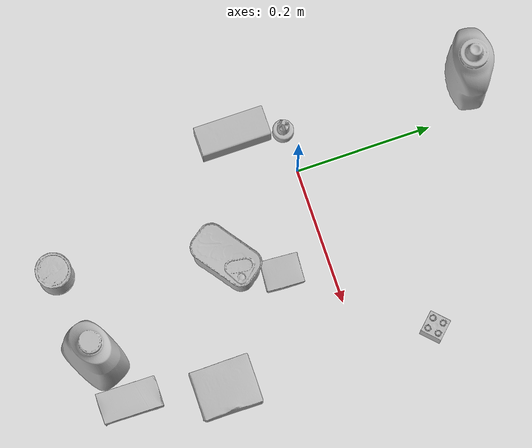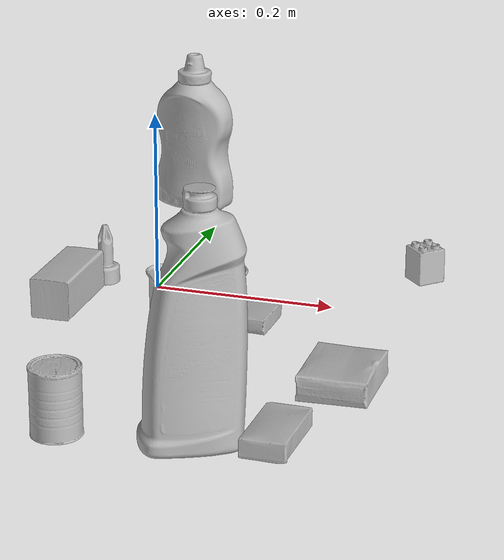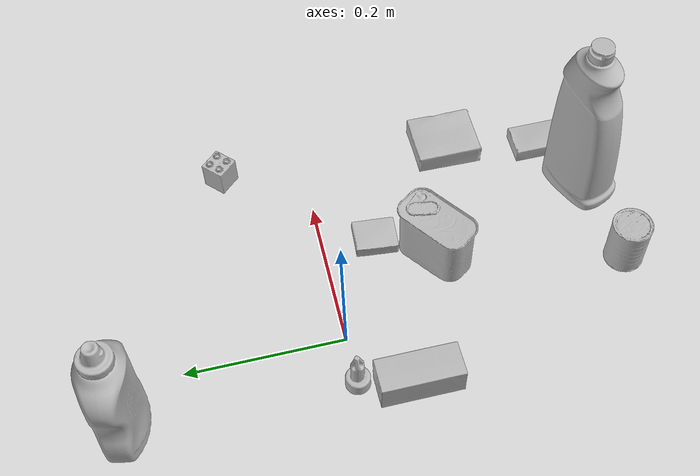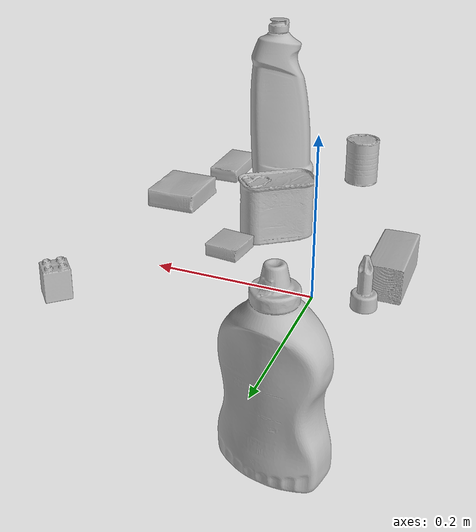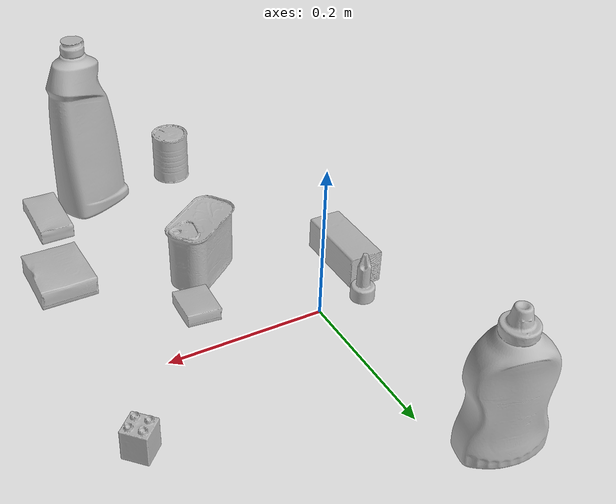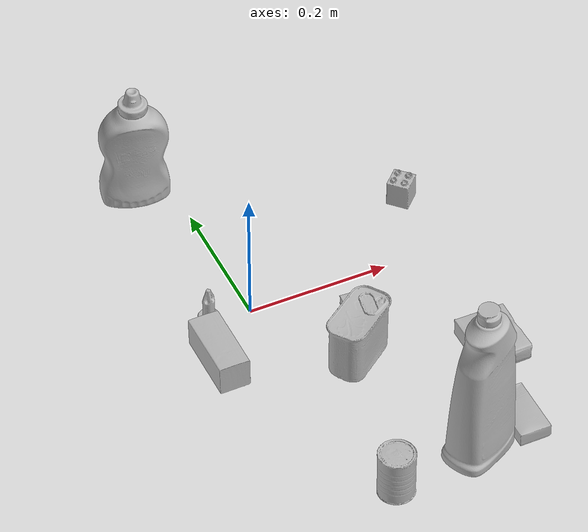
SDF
<sdf version="1.4">
  <world name="default">
    <light name="light1" type="point">
      <pose>0 0 1 0 0 0</pose>
      <diffuse>3 3 3 1</diffuse>
      <specular>3 3 3 1</specular>
    </light>
    <light name="light2" type="point">
      <pose>0 0.5 2 0 0 0</pose>
      <diffuse>1 1 1 1</diffuse>
      <specular>1 1 1 1</specular>
    </light>
    <light name="light3" type="point">
      <pose>0 0.5 2 0 0 0</pose>
      <diffuse>3 3 3 1</diffuse>
      <specular>3 3 3 1</specular>
    </light>
    <scene>
      <ambient>0.7 0.7 0.7</ambient>
    </scene>
    <model name="bottle1">
      <link name="link_bottle1">
        <collision name="default">
          <geometry>
            <mesh>
              <uri>model://bleach_cleanser/collision_meshes/collision.obj</uri>
              <scale>1.0 1.0 1.0</scale>
            </mesh>
          </geometry>
          <surface>
            <friction>
              <ode>
                <mu>0.5</mu>
                <mu2>0.5</mu2>
              </ode>
            </friction>
          <contact>
        <ode>
            <max_vel>0</max_vel>
            <min_depth>0.0001</min_depth>
            <kp>1e8</kp>
        </ode>
    </contact></surface>
        </collision>
        <visual name="default">
          <geometry>
            <mesh>
              <uri>model://bleach_cleanser/visual_meshes/visual.dae</uri>
              <scale>1.0 1.0 1.0</scale>
            </mesh>
          </geometry>
        </visual>
        <inertial>
          <mass>1.578364610671997</mass>
          <pose>0.00012193182919872925 0.003783882362768054 -0.024421613663434982 -0.07381669869228723 0.000420116582496686 -0.006875050642452563</pose>
          <inertia>
            <ixx>0.00768213</ixx>
            <iyy>0.0071586203</iyy>
            <izz>0.0013134446</izz>
            <ixy>0</ixy>
            <ixz>0</ixz>
            <iyz>0</iyz>
          </inertia>
        </inertial>
      </link>
      <pose>0.16267676651477814 -0.35565686225891113 0.12578420341014862 -0.0002011682973075976 1.572117754028401e-05 -1.1246535597682619</pose>
    </model>
    <model name="bottle2">
      <link name="link_bottle2">
        <collision name="default">
          <geometry>
            <mesh>
              <uri>model://mustard_bottle/collision_meshes/collision.obj</uri>
              <scale>1.0 1.0 1.0</scale>
            </mesh>
          </geometry>
          <surface>
            <friction>
              <ode>
                <mu>0.5</mu>
                <mu2>0.5</mu2>
              </ode>
            </friction>
          <contact>
        <ode>
            <max_vel>0</max_vel>
            <min_depth>0.0001</min_depth>
            <kp>1e8</kp>
        </ode>
    </contact></surface>
        </collision>
        <visual name="default">
          <geometry>
            <mesh>
              <uri>model://mustard_bottle/visual_meshes/visual.dae</uri>
              <scale>1.0 1.0 1.0</scale>
            </mesh>
          </geometry>
        </visual>
        <inertial>
          <mass>0.5896905064582825</mass>
          <pose>0.000503245391882956 -0.00015647403779439628 -0.0174757931381464 0.00041823284967905286 0.0009465779461724547 0.024853724225743102</pose>
          <inertia>
            <ixx>0.00163749</ixx>
            <iyy>0.0014367587</iyy>
            <izz>0.00043156123</izz>
            <ixy>0</ixy>
            <ixz>0</ixz>
            <iyz>0</iyz>
          </inertia>
        </inertial>
      </link>
      <pose>-0.0495162233710289 0.2735522985458374 0.09583085030317307 -0.0120504449823058 -0.004889341657226164 -1.7889836040264258</pose>
    </model>
    <model name="toy1">
      <link name="link_toy1">
        <collision name="default">
          <geometry>
            <mesh>
              <uri>model://b_lego_duplo/collision_meshes/collision.obj</uri>
              <scale>1.0 1.0 1.0</scale>
            </mesh>
          </geometry>
          <surface>
            <friction>
              <ode>
                <mu>0.5</mu>
                <mu2>0.5</mu2>
              </ode>
            </friction>
          <contact>
        <ode>
            <max_vel>0</max_vel>
            <min_depth>0.0001</min_depth>
            <kp>1e8</kp>
        </ode>
    </contact></surface>
        </collision>
        <visual name="default">
          <geometry>
            <mesh>
              <uri>model://b_lego_duplo/visual_meshes/visual.dae</uri>
              <scale>1.0 1.0 1.0</scale>
            </mesh>
          </geometry>
        </visual>
        <inertial>
          <mass>0.04927889630198479</mass>
          <pose>-0.00011053016351070255 -9.152428901870735e-06 0.0019294293597340584 -0.03749545918935276 -0.026353596882306905 0.4519115393215097</pose>
          <inertia>
            <ixx>1.0085294e-05</ixx>
            <iyy>1.015309e-05</iyy>
            <izz>8.985672e-06</izz>
            <ixy>0</ixy>
            <ixz>0</ixz>
            <iyz>0</iyz>
          </inertia>
        </inertial>
      </link>
      <pose>0.27740049362182617 0.10999090224504471 0.021814987063407898 3.1183214730174406e-06 8.440628837108743e-07 2.3399142034310194</pose>
    </model>
    <model name="toy2">
      <link name="link_toy2">
        <collision name="default">
          <geometry>
            <mesh>
              <uri>model://d_toy_airplane/collision_meshes/collision.obj</uri>
              <scale>1.0 1.0 1.0</scale>
            </mesh>
          </geometry>
          <surface>
            <friction>
              <ode>
                <mu>0.5</mu>
                <mu2>0.5</mu2>
              </ode>
            </friction>
          <contact>
        <ode>
            <max_vel>0</max_vel>
            <min_depth>0.0001</min_depth>
            <kp>1e8</kp>
        </ode>
    </contact></surface>
        </collision>
        <visual name="default">
          <geometry>
            <mesh>
              <uri>model://d_toy_airplane/visual_meshes/visual.dae</uri>
              <scale>1.0 1.0 1.0</scale>
            </mesh>
          </geometry>
        </visual>
        <inertial>
          <mass>0.023543989285826683</mass>
          <pose>9.41029647947289e-05 -5.8093268307857215e-05 -0.011728093028068542 0.0002670074791080515 0.004678977428991067 0.5194709842729006</pose>
          <inertia>
            <ixx>7.058034e-06</ixx>
            <iyy>7.063356e-06</iyy>
            <izz>2.1308651e-06</izz>
            <ixy>0</ixy>
            <ixz>0</ixz>
            <iyz>0</iyz>
          </inertia>
        </inertial>
      </link>
      <pose>-0.060990236699581146 -0.0008879272500053048 0.033339373767375946 0.00022970076116174764 -2.1716873747367224e-05 2.43326651056738</pose>
    </model>
    <model name="can1">
      <link name="link_can1">
        <collision name="default">
          <geometry>
            <mesh>
              <uri>model://master_chef_can/collision_meshes/collision.obj</uri>
              <scale>0.5 0.5 0.5</scale>
            </mesh>
          </geometry>
          <surface>
            <friction>
              <ode>
                <mu>0.5</mu>
                <mu2>0.5</mu2>
              </ode>
            </friction>
          <contact>
        <ode>
            <max_vel>0</max_vel>
            <min_depth>0.0001</min_depth>
            <kp>1e8</kp>
        </ode>
    </contact></surface>
        </collision>
        <visual name="default">
          <geometry>
            <mesh>
              <uri>model://master_chef_can/visual_meshes/visual.dae</uri>
              <scale>0.5 0.5 0.5</scale>
            </mesh>
          </geometry>
        </visual>
        <inertial>
          <mass>0.13489052653312683</mass>
          <pose>-4.6619643399026245e-05 1.392684936263322e-07 -5.080000119050965e-05 -0.0017995055981966167 0.0006479432683086387 -0.6102521024359563</pose>
          <inertia>
            <ixx>7.9171594e-05</ixx>
            <iyy>7.85889e-05</iyy>
            <izz>4.3748354e-05</izz>
            <ixy>0</ixy>
            <ixz>0</ixz>
            <iyz>0</iyz>
          </inertia>
        </inertial>
      </link>
      <pose>0.03483486548066139 -0.3736478090286255 0.03530199080705643 -1.4864794236915224e-06 -1.1298982323137301e-06 -0.6767160480448651</pose>
    </model>
    <model name="can2">
      <link name="link_can2">
        <collision name="default">
          <geometry>
            <mesh>
              <uri>model://potted_meat_can/collision_meshes/collision.obj</uri>
              <scale>1.0 1.0 1.0</scale>
            </mesh>
          </geometry>
          <surface>
            <friction>
              <ode>
                <mu>0.5</mu>
                <mu2>0.5</mu2>
              </ode>
            </friction>
          <contact>
        <ode>
            <max_vel>0</max_vel>
            <min_depth>0.0001</min_depth>
            <kp>1e8</kp>
        </ode>
    </contact></surface>
        </collision>
        <visual name="default">
          <geometry>
            <mesh>
              <uri>model://potted_meat_can/visual_meshes/visual.dae</uri>
              <scale>1.0 1.0 1.0</scale>
            </mesh>
          </geometry>
        </visual>
        <inertial>
          <mass>0.4512253701686859</mass>
          <pose>0.00022888150124344975 -5.9891150158364326e-05 -0.0006367433816194534 -0.028093371406289817 -0.007232609295346345 0.015406271951796056</pose>
          <inertia>
            <ixx>0.00058045425</ixx>
            <iyy>0.00035267006</iyy>
            <izz>0.00042216998</izz>
            <ixy>0</ixy>
            <ixz>0</ixz>
            <iyz>0</iyz>
          </inertia>
        </inertial>
      </link>
      <pose>0.09377305209636688 -0.13842567801475525 0.04212801158428192 -1.0654909775115508e-07 -2.1942035601104357e-07 2.1897244257807897</pose>
    </model>
    <model name="box1">
      <link name="link_box1">
        <collision name="default">
          <geometry>
            <mesh>
              <uri>model://pudding_box/collision_meshes/collision.obj</uri>
              <scale>0.5 0.5 0.5</scale>
            </mesh>
          </geometry>
          <surface>
            <friction>
              <ode>
                <mu>0.5</mu>
                <mu2>0.5</mu2>
              </ode>
            </friction>
          <contact>
        <ode>
            <max_vel>0</max_vel>
            <min_depth>0.0001</min_depth>
            <kp>1e8</kp>
        </ode>
    </contact></surface>
        </collision>
        <visual name="default">
          <geometry>
            <mesh>
              <uri>model://pudding_box/visual_meshes/visual.dae</uri>
              <scale>0.5 0.5 0.5</scale>
            </mesh>
          </geometry>
        </visual>
        <inertial>
          <mass>0.02510015107691288</mass>
          <pose>0.00024474109522998333 0.0004033942532259971 -0.0002594413817860186 0.005213101332996491 -0.0066037987089797995 0.020079823298230236</pose>
          <inertia>
            <ixx>7.093607e-06</ixx>
            <iyy>4.7726294e-06</iyy>
            <izz>1.04755645e-05</izz>
            <ixy>0</ixy>
            <ixz>0</ixz>
            <iyz>0</iyz>
          </inertia>
        </inertial>
      </link>
      <pose>0.1327313929796219 -0.06859350204467773 0.009862897917628288 0.022348457150767612 -0.011391773553486213 -0.06701633347078878</pose>
    </model>
    <model name="box2">
      <link name="link_box2">
        <collision name="default">
          <geometry>
            <mesh>
              <uri>model://gelatin_box/collision_meshes/collision.obj</uri>
              <scale>1.0 1.0 1.0</scale>
            </mesh>
          </geometry>
          <surface>
            <friction>
              <ode>
                <mu>0.5</mu>
                <mu2>0.5</mu2>
              </ode>
            </friction>
          <contact>
        <ode>
            <max_vel>0</max_vel>
            <min_depth>0.0001</min_depth>
            <kp>1e8</kp>
        </ode>
    </contact></surface>
        </collision>
        <visual name="default">
          <geometry>
            <mesh>
              <uri>model://gelatin_box/visual_meshes/visual.dae</uri>
              <scale>1.0 1.0 1.0</scale>
            </mesh>
          </geometry>
        </visual>
        <inertial>
          <mass>0.2452477514743805</mass>
          <pose>0.000431961816502735 0.00011156871187267825 -0.0003640321083366871 -0.0010503720803081407 -0.004755818225601415 0.01644055574590794</pose>
          <inertia>
            <ixx>0.0001731249</ixx>
            <iyy>0.0001236622</iyy>
            <izz>0.00026353472</izz>
            <ixy>0</ixy>
            <ixz>0</ixz>
            <iyz>0</iyz>
          </inertia>
        </inertial>
      </link>
      <pose>0.2632269859313965 -0.19683818519115448 0.01516831573098898 0.005596946431985857 -0.007303985056810799 -0.007219650423814485</pose>
    </model>
    <model name="box3">
      <link name="link_box3">
        <collision name="default">
          <geometry>
            <mesh>
              <uri>model://sugar_box/collision_meshes/collision.obj</uri>
              <scale>0.5 0.5 0.5</scale>
            </mesh>
          </geometry>
          <surface>
            <friction>
              <ode>
                <mu>0.5</mu>
                <mu2>0.5</mu2>
              </ode>
            </friction>
          <contact>
        <ode>
            <max_vel>0</max_vel>
            <min_depth>0.0001</min_depth>
            <kp>1e8</kp>
        </ode>
    </contact></surface>
        </collision>
        <visual name="default">
          <geometry>
            <mesh>
              <uri>model://sugar_box/visual_meshes/visual.dae</uri>
              <scale>0.5 0.5 0.5</scale>
            </mesh>
          </geometry>
        </visual>
        <inertial>
          <mass>0.12277840822935104</mass>
          <pose>0.0005171863595023751 1.9245549992774613e-05 -0.00018182402709499002 -0.0004046257474220826 0.0010506635214397083 0.0026153787892127145</pose>
          <inertia>
            <ixx>2.5574656e-05</ixx>
            <iyy>8.2662555e-05</iyy>
            <izz>9.895694e-05</izz>
            <ixy>0</ixy>
            <ixz>0</ixz>
            <iyz>0</iyz>
          </inertia>
        </inertial>
      </link>
      <pose>0.23595280945301056 -0.33062803745269775 0.011399305425584316 0.0007746742906089534 -0.023433063633990194 -1.584442057629832</pose>
    </model>
    <model name="box4">
      <link name="link_box4">
        <collision name="default">
          <geometry>
            <mesh>
              <uri>model://wood_block/collision_meshes/collision.obj</uri>
              <scale>0.5 0.5 0.5</scale>
            </mesh>
          </geometry>
          <surface>
            <friction>
              <ode>
                <mu>0.5</mu>
                <mu2>0.5</mu2>
              </ode>
            </friction>
          <contact>
        <ode>
            <max_vel>0</max_vel>
            <min_depth>0.0001</min_depth>
            <kp>1e8</kp>
        </ode>
    </contact></surface>
        </collision>
        <visual name="default">
          <geometry>
            <mesh>
              <uri>model://wood_block/visual_meshes/visual.dae</uri>
              <scale>0.5 0.5 0.5</scale>
            </mesh>
          </geometry>
        </visual>
        <inertial>
          <mass>0.2967980206012726</mass>
          <pose>-2.9066577553749084e-06 -0.00028540470520965755 0.00013204291462898254 -0.05220902064674581 -0.005192696668457315 -0.006861378272965977</pose>
          <inertia>
            <ixx>9.929016e-05</ixx>
            <iyy>0.00031365763</iyy>
            <izz>0.00031248436</izz>
            <ixy>0</ixy>
            <ixz>0</ixz>
            <iyz>0</iyz>
          </inertia>
        </inertial>
      </link>
      <pose>-0.07789270579814911 -0.07147030532360077 0.02262926660478115 -0.005208586138360014 0.005718770914533722 1.573993236254368</pose>
    </model>
  <physics type="ode">
      <max_contacts>50</max_contacts>
      <ode>
        <solver>
          <type>quick</type>
          <iters>75</iters>
        </solver>
        <constraints>
          <contact_max_correcting_vel>0</contact_max_correcting_vel>
          <contact_surface_layer>0</contact_surface_layer>
        </constraints>
      </ode>
    </physics></world>
</sdf>
